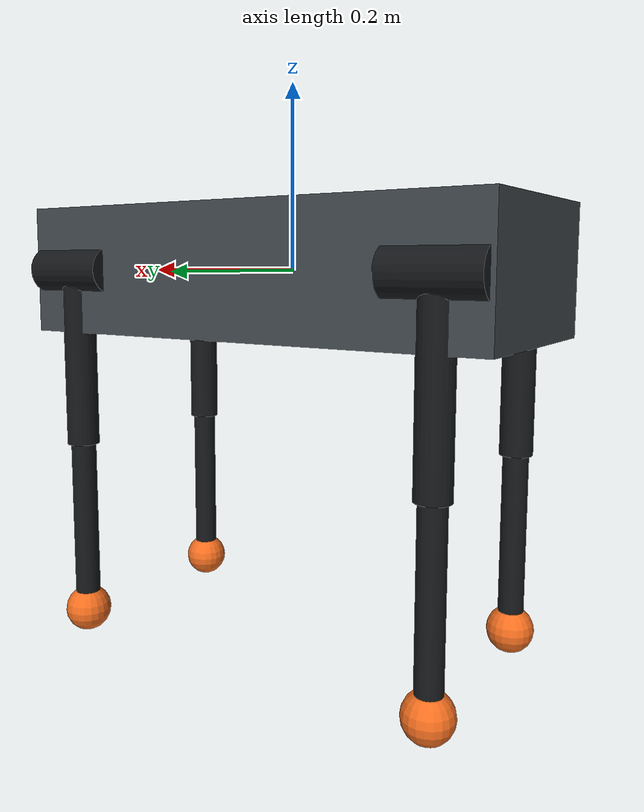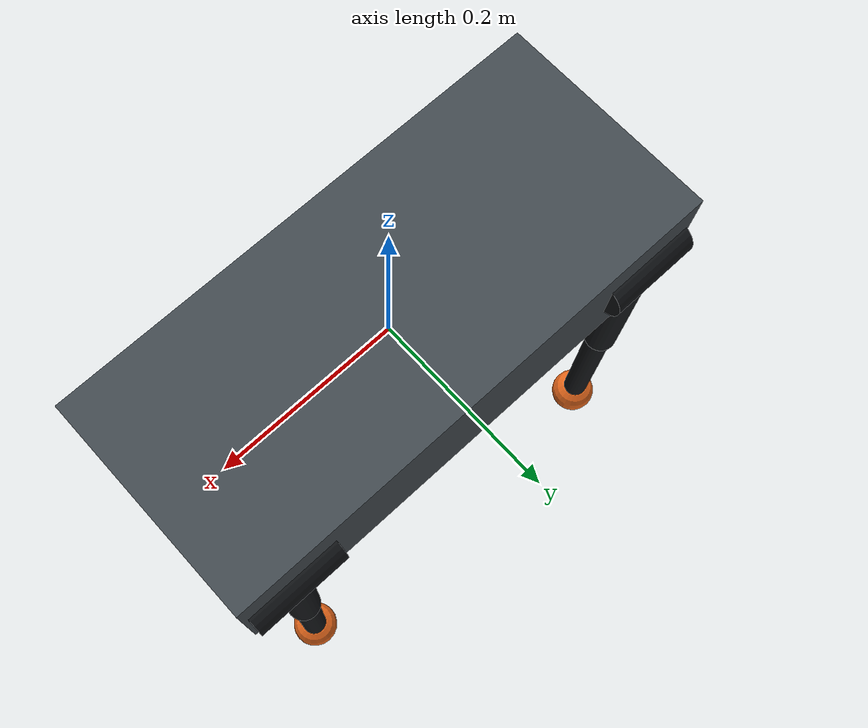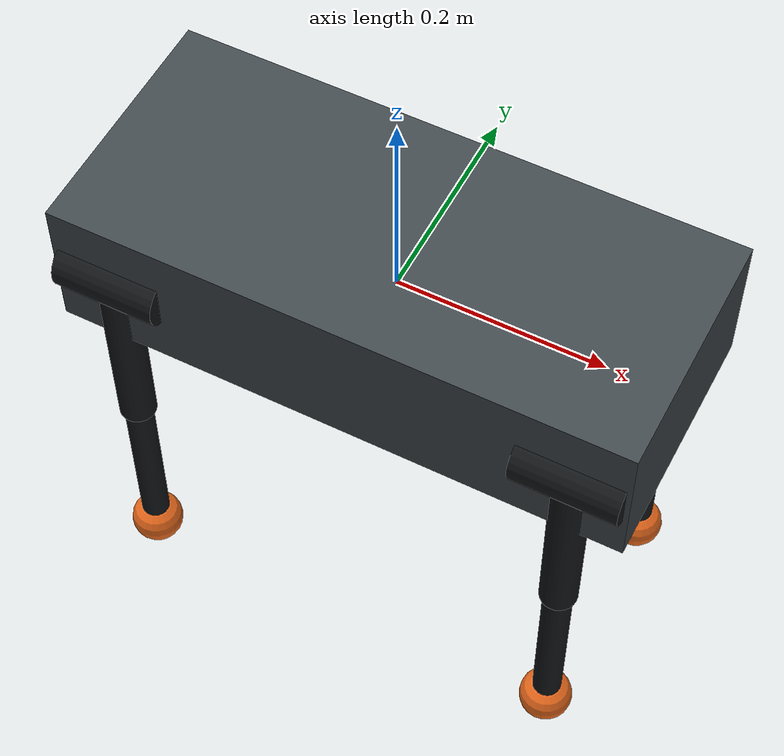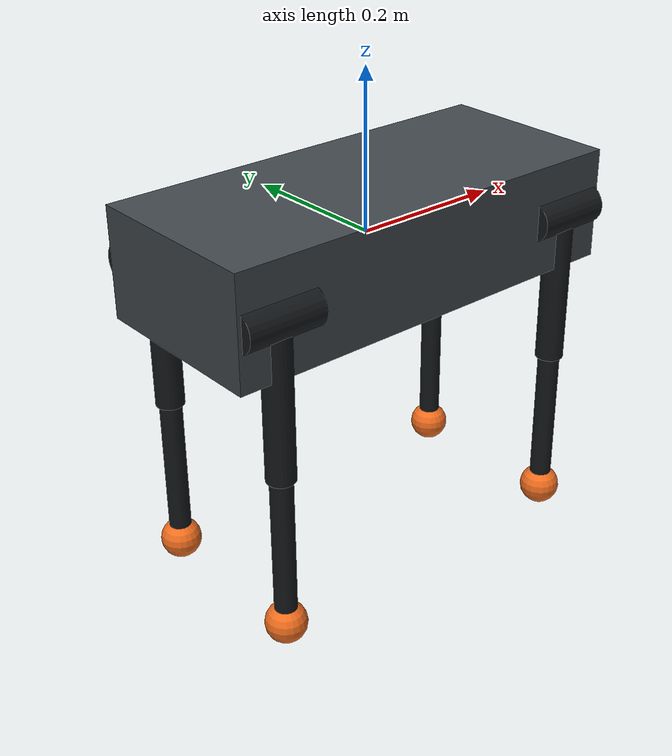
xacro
<?xml version="1.0"?>
<robot xmlns:xacro="http://www.ros.org/wiki/xacro" name="$(arg robot_name)">
  <xacro:arg name="robot_name" default="generic_quadruped"/>

  <xacro:property name="body_length" value="0.55"/>
  <xacro:property name="body_width" value="0.24"/>
  <xacro:property name="body_height" value="0.14"/>
  <xacro:property name="hip_offset_x" value="0.22"/>
  <xacro:property name="hip_offset_y" value="0.11"/>
  <xacro:property name="thigh_length" value="0.20"/>
  <xacro:property name="calf_length" value="0.20"/>

  <material name="body_gray">
    <color rgba="0.25 0.28 0.30 1.0"/>
  </material>
  <material name="leg_dark">
    <color rgba="0.08 0.09 0.10 1.0"/>
  </material>
  <material name="foot_orange">
    <color rgba="0.95 0.43 0.12 1.0"/>
  </material>

  <link name="base_footprint"/>

  <joint name="base_footprint_joint" type="fixed">
    <parent link="base_footprint"/>
    <child link="base_link"/>
    <origin xyz="0 0 0" rpy="0 0 0"/>
  </joint>

  <link name="base_link">
    <visual>
      <origin xyz="0 0 0" rpy="0 0 0"/>
      <geometry>
        <box size="${body_length} ${body_width} ${body_height}"/>
      </geometry>
      <material name="body_gray"/>
    </visual>
    <collision>
      <origin xyz="0 0 0" rpy="0 0 0"/>
      <geometry>
        <box size="${body_length} ${body_width} ${body_height}"/>
      </geometry>
    </collision>
    <inertial>
      <mass value="12.0"/>
      <origin xyz="0 0 0" rpy="0 0 0"/>
      <inertia ixx="0.12" ixy="0.0" ixz="0.0" iyy="0.32" iyz="0.0" izz="0.38"/>
    </inertial>
  </link>

  <xacro:macro name="three_dof_leg" params="prefix hip_x hip_y">
    <link name="${prefix}_hip_link">
      <visual>
        <origin xyz="0 0 0" rpy="0 1.5708 0"/>
        <geometry>
          <cylinder radius="0.025" length="0.10"/>
        </geometry>
        <material name="leg_dark"/>
      </visual>
    </link>

    <joint name="${prefix}_hip_abduction_joint" type="revolute">
      <parent link="base_link"/>
      <child link="${prefix}_hip_link"/>
      <origin xyz="${hip_x} ${hip_y} 0.0" rpy="0 0 0"/>
      <axis xyz="1 0 0"/>
      <limit lower="-0.8" upper="0.8" effort="40.0" velocity="20.0"/>
    </joint>

    <link name="${prefix}_thigh_link">
      <visual>
        <origin xyz="0 0 ${-thigh_length / 2.0}" rpy="0 0 0"/>
        <geometry>
          <cylinder radius="0.018" length="${thigh_length}"/>
        </geometry>
        <material name="leg_dark"/>
      </visual>
    </link>

    <joint name="${prefix}_hip_pitch_joint" type="revolute">
      <parent link="${prefix}_hip_link"/>
      <child link="${prefix}_thigh_link"/>
      <origin xyz="0 0 0" rpy="0 0 0"/>
      <axis xyz="0 1 0"/>
      <limit lower="-1.8" upper="1.8" effort="40.0" velocity="20.0"/>
    </joint>

    <link name="${prefix}_calf_link">
      <visual>
        <origin xyz="0 0 ${-calf_length / 2.0}" rpy="0 0 0"/>
        <geometry>
          <cylinder radius="0.014" length="${calf_length}"/>
        </geometry>
        <material name="leg_dark"/>
      </visual>
    </link>

    <joint name="${prefix}_knee_pitch_joint" type="revolute">
      <parent link="${prefix}_thigh_link"/>
      <child link="${prefix}_calf_link"/>
      <origin xyz="0 0 ${-thigh_length}" rpy="0 0 0"/>
      <axis xyz="0 1 0"/>
      <limit lower="-2.8" upper="0.1" effort="40.0" velocity="20.0"/>
    </joint>

    <link name="${prefix}_foot_link">
      <visual>
        <origin xyz="0 0 0" rpy="0 0 0"/>
        <geometry>
          <sphere radius="0.026"/>
        </geometry>
        <material name="foot_orange"/>
      </visual>
      <collision>
        <origin xyz="0 0 0" rpy="0 0 0"/>
        <geometry>
          <sphere radius="0.026"/>
        </geometry>
      </collision>
    </link>

    <joint name="${prefix}_foot_fixed_joint" type="fixed">
      <parent link="${prefix}_calf_link"/>
      <child link="${prefix}_foot_link"/>
      <origin xyz="0 0 ${-calf_length}" rpy="0 0 0"/>
    </joint>
  </xacro:macro>

  <xacro:three_dof_leg prefix="front_left" hip_x="${hip_offset_x}" hip_y="${hip_offset_y}"/>
  <xacro:three_dof_leg prefix="front_right" hip_x="${hip_offset_x}" hip_y="${-hip_offset_y}"/>
  <xacro:three_dof_leg prefix="rear_left" hip_x="${-hip_offset_x}" hip_y="${hip_offset_y}"/>
  <xacro:three_dof_leg prefix="rear_right" hip_x="${-hip_offset_x}" hip_y="${-hip_offset_y}"/>
</robot>
